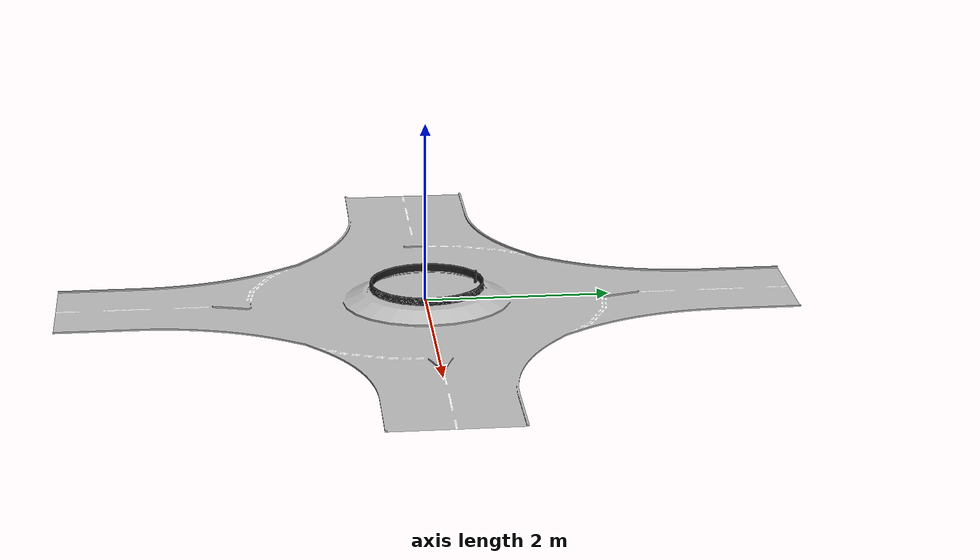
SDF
<?xml version='1.0'?>
<sdf version='1.7'>
  <model name='cross'>
    <link name='body'>
      <self_collide>1</self_collide>
      <enable_wind>0</enable_wind>
      <kinematic>0</kinematic>
      <pose>0 0 0 0 -0 0</pose>
      <gravity>1</gravity>
      <visual name='visual'>
        <geometry>
          <mesh>
            <uri>/home/robolab/.gazebo/models/cross/meshes/test.dae</uri>
            <scale>0.12 0.15 0.12 </scale>
          </mesh>
        </geometry>
        <material>
          <shader type='pixel'>
            <normal_map>__default__</normal_map>
          </shader>
        </material>
        <pose>0 0 0 0 -0 0</pose>
        <transparency>0</transparency>
        <cast_shadows>1</cast_shadows>
      </visual>
    </link>
    <static>1</static>
    <allow_auto_disable>1</allow_auto_disable>
  </model>
</sdf>
